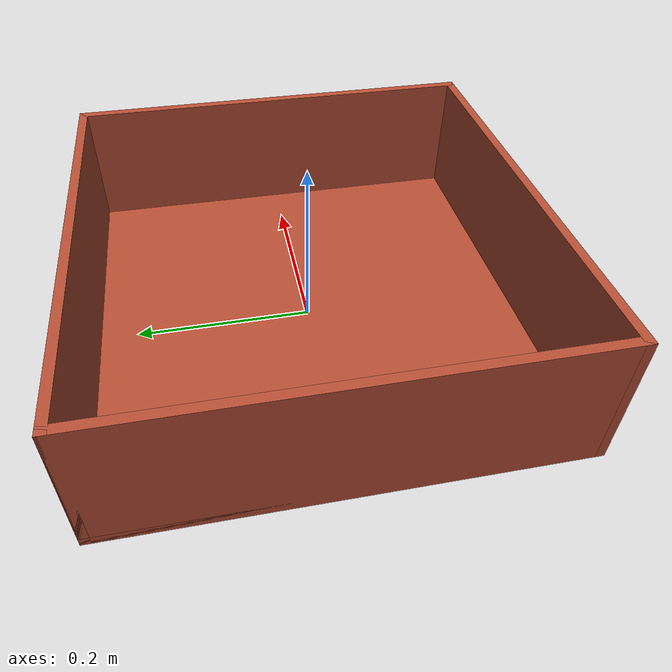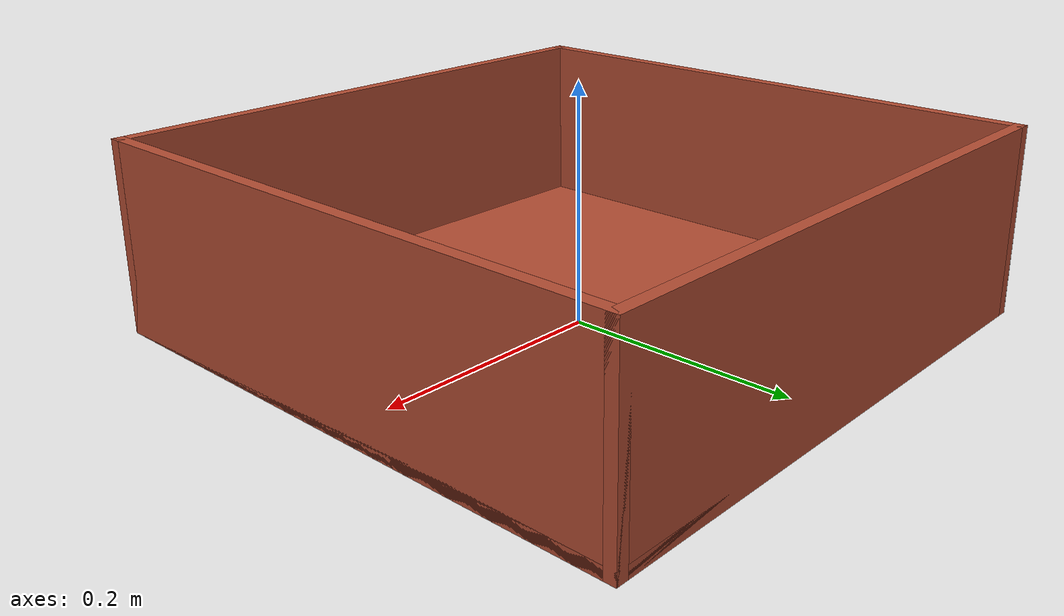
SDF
<?xml version="1.0" ?>
<sdf version="1.7">
  <model name="strage_box">
    <static>true</static>

    <link name="box_body">

      <!-- === 前面の壁 === -->
      <collision name="front_collision">
        <pose>0 0.245 0.08 0 0 0</pose>
        <geometry>
          <box><size>0.5 0.01 0.16</size></box>
        </geometry>
      </collision>
      <visual name="front_visual">
        <pose>0 0.245 0.08 0 0 0</pose>
        <geometry>
          <box><size>0.5 0.01 0.16</size></box>
        </geometry>
        <material><ambient>0.7 0.3 0.2 1</ambient></material>
      </visual>

      <!-- === 背面の壁 === -->
      <collision name="back_collision">
        <pose>0 -0.245 0.08 0 0 0</pose>
        <geometry>
          <box><size>0.5 0.01 0.16</size></box>
        </geometry>
      </collision>
      <visual name="back_visual">
        <pose>0 -0.245 0.08 0 0 0</pose>
        <geometry>
          <box><size>0.5 0.01 0.16</size></box>
        </geometry>
        <material><ambient>0.7 0.3 0.2 1</ambient></material>
      </visual>

      <!-- === 左の壁 === -->
      <collision name="left_collision">
        <pose>-0.245 0 0.08 0 0 0</pose>
        <geometry>
          <box><size>0.01 0.5 0.16</size></box>
        </geometry>
      </collision>
      <visual name="left_visual">
        <pose>-0.245 0 0.08 0 0 0</pose>
        <geometry>
          <box><size>0.01 0.5 0.16</size></box>
        </geometry>
        <material><ambient>0.7 0.3 0.2 1</ambient></material>
      </visual>

      <!-- === 右の壁 === -->
      <collision name="right_collision">
        <pose>0.245 0 0.08 0 0 0</pose>
        <geometry>
          <box><size>0.01 0.5 0.16</size></box>
        </geometry>
      </collision>
      <visual name="right_visual">
        <pose>0.245 0 0.08 0 0 0</pose>
        <geometry>
          <box><size>0.01 0.5 0.16</size></box>
        </geometry>
        <material><ambient>0.7 0.3 0.2 1</ambient></material>
      </visual>

      <!-- === 底面 === -->
      <collision name="bottom_collision">
        <pose>0 0 0.005 0 0 0</pose>
        <geometry>
          <box><size>0.5 0.5 0.01</size></box>
        </geometry>
      </collision>
      <visual name="bottom_visual">
        <pose>0 0 0.005 0 0 0</pose>
        <geometry>
          <box><size>0.5 0.5 0.01</size></box>
        </geometry>
        <material><ambient>0.7 0.3 0.2 1</ambient></material>
      </visual>

    </link>
  </model>
</sdf>
